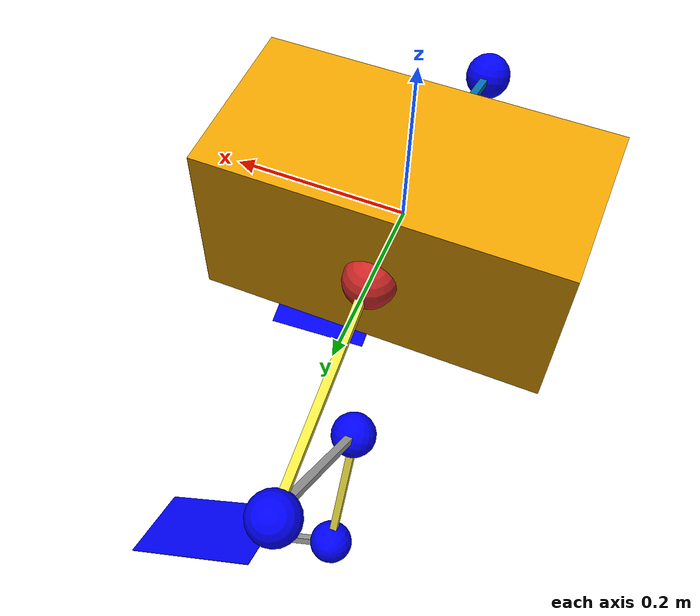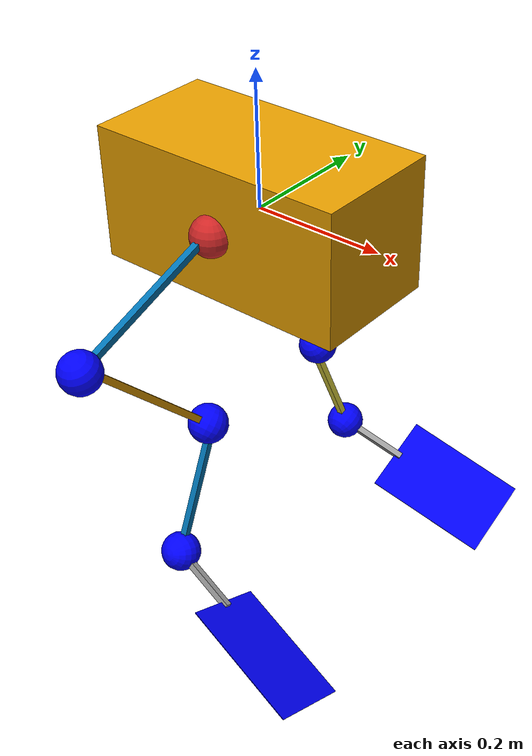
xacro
<?xml version="1.0"?>
<robot name="duck" xmlns:xacro="http://www.ros.org/wiki/xacro">
    <!-- Propreties -->
    <xacro:arg name="namespace" default="duck"/>
    <xacro:arg name="debug" default="0"/>

    <xacro:arg name="cog" default="0 0 0"/>
    <xacro:arg name="mass" default="0.01"/>

    <xacro:arg name="ixx" default="0.0015"/>
    <xacro:arg name="iyy" default="0.0015"/>
    <xacro:arg name="izz" default="0.0015"/>
    <xacro:arg name="ixy" default="0.0"/>
    <xacro:arg name="ixz" default="0.0"/>
    <xacro:arg name="iyz" default="0.0"/>

    <xacro:arg name="mesh_filename" default="$(find biped_descriptions)/meshes/tbi.stl"/>

    <!-- Links -->
    <!-- world link -->

    <link name="$(arg namespace)/base_link">
        <inertial>
        <origin xyz="0 0 -0.1" rpy="0 0 0" />
        <mass value="$(arg mass)"/>
        <inertia
            ixx="$(arg ixx)" ixy="$(arg ixy)" ixz="$(arg ixz)"
            iyy="$(arg iyy)" iyz="$(arg iyz)"
            izz="$(arg izz)"/>
        </inertial>
        <visual>
            <origin xyz="0 0 0.0" rpy="0 0 0" />
            <geometry>
                <box size="0.4 0.2 0.2"/>
            </geometry>
        </visual>
        <collision>
            <origin xyz="0 0 0" rpy="0 0 0"/>
            <geometry>
                <box size="0.4 0.2 0.2" />
            </geometry>
        </collision>
    </link>

    <!-- Sphere 1 : 2 rotations -->
    <link name="$(arg namespace)/base_to_hip_left">
        <inertial>
        <origin xyz="$(arg cog)" rpy="0 0 0" />
        <mass value="0.001"/>
        <inertia
            ixx="0.0002" ixy="$(arg ixy)" ixz="$(arg ixz)"
            iyy="0.0002" iyz="$(arg iyz)"
            izz="0.0002"/>
        </inertial>
        <visual>
            <origin xyz="0 0 0.0" rpy="0 0 0" />
            <geometry>
                <sphere radius="0.03"/>
            </geometry>
        </visual>
    </link>

    <joint name="$(arg namespace)/hip_joint_left" type="revolute">
        <origin xyz="0.0 0.1 0.0" rpy="0 0 0"/>
        <parent link="$(arg namespace)/base_link"/>
        <child link="$(arg namespace)/base_to_hip_left"/>
        <axis xyz="0 1 1"/>                         <!-- Rotation by Y and Z-->
        <limit effort="3.0" velocity="3.0" lower="-0.5" upper="0.5"/> <!-- Here can be modified later ... (for angles limits)-->
    </joint>

    <!-- Mirror base_to_hip link -->
    <link name="$(arg namespace)/base_to_hip_right">
        <!-- Adjust the origin for mirroring -->
        <origin xyz="-$(arg cog)" rpy="0 0 0" />
        <!-- Copy the inertial properties -->
        <inertial>
            <origin xyz="$(arg cog)" rpy="0 0 0" />
            <mass value="0.001"/>
            <inertia
                ixx="0.0002" ixy="$(arg ixy)" ixz="$(arg ixz)"
                iyy="0.0002" iyz="$(arg iyz)"
                izz="0.0002"/>
        </inertial>
        <!-- Mirror the sphere geometry -->
        <visual>
            <origin xyz="0 0 0" rpy="0 0 0" />
            <geometry>
                <sphere radius="0.03"/>
            </geometry>
        </visual>
    </link>

    <!-- Mirror hip_joint -->
    <joint name="$(arg namespace)/hip_joint_right" type="revolute">
        <!-- Adjust the origin for mirroring -->
        <origin xyz="0.0 -0.1 0.0" rpy="0 0 0"/>
        <!-- Copy the parent and child links -->
        <parent link="$(arg namespace)/base_link"/>
        <child link="$(arg namespace)/base_to_hip_right"/>
        <!-- Invert the joint axis -->
        <axis xyz="-1 1 1"/>
        <!-- Copy the joint limits -->
        <limit effort="3.0" velocity="3.0" lower="-0.5" upper="0.5"/> <!-- Here can be modified later ... (for angles limits)-->
    </joint>

    <!-- Femur link -->
    <link name="$(arg namespace)/femur_link_left">
        <inertial>
        <origin xyz="$(arg cog)" rpy="0 0 0" />
        <mass value="0.001"/>
        <inertia
            ixx="0.0002" ixy="$(arg ixy)" ixz="$(arg ixz)"
            iyy="0.0002" iyz="$(arg iyz)"
            izz="0.0002"/>
        </inertial>
        <visual>
            <origin xyz="0.0 0.0 0.0" rpy="0 0 0" />
            <geometry>
                <box size="0.01 0.25 0.01"/>
            </geometry>
        </visual>
    </link>

    <joint name="$(arg namespace)/to_hip_joint_left" type="prismatic">
        <origin xyz="0.0 0.13 -0.04" rpy="-0.35 0 0"/>
        <parent link="$(arg namespace)/base_to_hip_left"/>
        <child link="$(arg namespace)/femur_link_left"/>
        <axis xyz="0 0 0"/>
        <limit effort="0.0" velocity="0.0" lower="0.0" upper="0.0"/>
    </joint>

    <!-- Mirror femur_link -->
    <link name="$(arg namespace)/femur_link_right">
        <!-- Adjust the origin for mirroring -->
        <origin xyz="-$(arg cog)" rpy="0 0 0" />
        <!-- Copy the inertial properties -->
        <inertial>
            <origin xyz="$(arg cog)" rpy="0 0 0" />
            <mass value="0.001"/>
            <inertia
                ixx="0.0002" ixy="$(arg ixy)" ixz="$(arg ixz)"
                iyy="0.0002" iyz="$(arg iyz)"
                izz="0.0002"/>
        </inertial>
        <!-- Mirror the box geometry -->
        <visual>
            <origin xyz="0 0 0" rpy="0 0 0" />
            <geometry>
                <box size="0.01 0.25 0.01"/>
            </geometry>
        </visual>
    </link>

    <joint name="$(arg namespace)/to_hip_joint_right" type="prismatic">
        <origin xyz="0.0 -0.13 -0.04" rpy="0.35 0 0"/>
        <parent link="$(arg namespace)/base_to_hip_right"/>
        <child link="$(arg namespace)/femur_link_right"/>
        <axis xyz="0 0 0"/>
        <limit effort="0.0" velocity="0.0" lower="0.0" upper="0.0"/>
    </joint>

    <!-- Sphere 2 : 1 rotations -->
    <link name="$(arg namespace)/hip_to_knee_left">
        <inertial>
        <origin xyz="$(arg cog)" rpy="0 0 0" />
        <mass value="0.001"/>
        <inertia
            ixx="0.0002" ixy="$(arg ixy)" ixz="$(arg ixz)"
            iyy="0.0002" iyz="$(arg iyz)"
            izz="0.0002"/>
        </inertial>
        <visual>
            <origin xyz="0 0 0.0" rpy="0 0 0" />
            <geometry>
                <sphere radius="0.03"/>
            </geometry>
            <material name="blue">
                <color rgba="0 0 1 1"/>
            </material>
        </visual>
    </link>

    <joint name="$(arg namespace)/knee_joint_left" type="revolute">
        <origin xyz="0.0 0.125 0.0" rpy="0 0 0"/>
        <parent link="$(arg namespace)/femur_link_left"/>
        <child link="$(arg namespace)/hip_to_knee_left"/>
        <axis xyz="0 1 0"/> <!-- Defines the axis of translation -->
        <limit effort="3.0" velocity="0.01" lower="-0.5" upper="0.5"/> <!-- Here can be modified later ... (for angles limits)-->
    </joint>

    <!-- Mirror base_to_hip link -->
    <!-- Sphere 2 : 1 rotations -->
    <link name="$(arg namespace)/hip_to_knee_right">
        <inertial>
        <origin xyz="$(arg cog)" rpy="0 0 0" />
        <mass value="0.001"/>
        <inertia
            ixx="0.0000045" ixy="$(arg ixy)" ixz="$(arg ixz)"
            iyy="0.0000045" iyz="$(arg iyz)"
            izz="0.0000045"/>
        </inertial>
        <visual>
            <origin xyz="0 0 0.0" rpy="0 0 0" />
            <geometry>
                <sphere radius="0.03"/>
            </geometry>
            <material name="blue">
                <color rgba="0 0 1 1"/>
            </material>
        </visual>
    </link>

    <joint name="$(arg namespace)/knee_joint_right" type="revolute">
        <origin xyz="0.0 -0.125 0.0" rpy="0 0 0"/>
        <parent link="$(arg namespace)/femur_link_right"/>
        <child link="$(arg namespace)/hip_to_knee_right"/>
        <axis xyz="0 1 0"/> <!-- Defines the axis of translation -->
        <limit effort="3.0" velocity="0.01" lower="-0.5" upper="0.5"/> <!-- Here can be modified later ... (for angles limits)-->
    </joint>

    <!-- Tibio link -->
    <link name="$(arg namespace)/tibio_link_left">
        <inertial>
        <origin xyz="$(arg cog)" rpy="0 0 0" />
        <mass value="0.001"/>
        <inertia
            ixx="0.0002" ixy="$(arg ixy)" ixz="$(arg ixz)"
            iyy="0.0002" iyz="$(arg iyz)"
            izz="0.0002"/>
        </inertial>
        <visual>
            <origin xyz="0 0 0.0" rpy="0 0 0" />
            <geometry>
                <box size="0.01 0.3 0.01"/>
            </geometry>
        </visual>
    </link>

    <joint name="$(arg namespace)/to_knee_joint_left" type="prismatic">
        <origin xyz="0.0 -0.07 -0.14" rpy="-2.0 0 0"/>
        <parent link="$(arg namespace)/hip_to_knee_left"/>
        <child link="$(arg namespace)/tibio_link_left"/>
        <axis xyz="0 0 0"/>
        <limit effort="0.0" velocity="0.0" lower="0.0" upper="0.0"/>
    </joint>

    <!-- Tibio link Mirror-->
    <link name="$(arg namespace)/tibio_link_right">
        <inertial>
        <origin xyz="$(arg cog)" rpy="0 0 0" />
        <mass value="0.001"/>
        <inertia
            ixx="0.0002" ixy="$(arg ixy)" ixz="$(arg ixz)"
            iyy="0.0002" iyz="$(arg iyz)"
            izz="0.0002"/>
        </inertial>
        <visual>
            <origin xyz="0 0 0.0" rpy="0 0 0" />
            <geometry>
                <box size="0.01 0.3 0.01"/>
            </geometry>
        </visual>
    </link>

    <joint name="$(arg namespace)/to_knee_joint_right" type="prismatic">
        <origin xyz="0.0 0.07 -0.14" rpy="2.0 0 0"/>
        <parent link="$(arg namespace)/hip_to_knee_right"/>
        <child link="$(arg namespace)/tibio_link_right"/>
        <axis xyz="0 0 0"/>
        <limit effort="0.0" velocity="0.0" lower="0.0" upper="0.0"/>
    </joint>

    <!-- Sphere 3 : 1 rotations -->
    <link name="$(arg namespace)/knee_to_ankle_left">
        <inertial>
        <origin xyz="$(arg cog)" rpy="0 0 0" />
        <mass value="0.001"/>
        <inertia
            ixx="0.0002" ixy="$(arg ixy)" ixz="$(arg ixz)"
            iyy="0.0002" iyz="$(arg iyz)"
            izz="0.0002"/>
        </inertial>
        <visual>
            <origin xyz="0 0 0.0" rpy="0 0 0" />
            <geometry>
                <sphere radius="0.03"/>
            </geometry>
            <material name="blue">
                <color rgba="0 0 1 1"/>
            </material>
        </visual>
    </link>

    <joint name="$(arg namespace)/ankle_joint_left" type="revolute">
        <origin xyz="0.0 0.15 0.0" rpy="0 0 0"/>
        <parent link="$(arg namespace)/tibio_link_left"/>
        <child link="$(arg namespace)/knee_to_ankle_left"/>
        <axis xyz="0 1 0"/> <!-- Defines the axis of translation -->
        <limit effort="3.0" velocity="0.01" lower="-0.5" upper="0.5"/> <!-- Here can be modified later ... (for angles limits)-->
    </joint>

    <!--ToAnkle mirror -->
    <!-- Sphere 3 : 1 rotations -->
    <link name="$(arg namespace)/knee_to_ankle_right">
        <inertial>
        <origin xyz="$(arg cog)" rpy="0 0 0" />
        <mass value="0.01"/>
        <inertia
            ixx="0.0002" ixy="$(arg ixy)" ixz="$(arg ixz)"
            iyy="0.0002" iyz="$(arg iyz)"
            izz="0.0002"/>
        </inertial>
        <visual>
            <origin xyz="0 0 0.0" rpy="0 0 0" />
            <geometry>
                <sphere radius="0.03"/>
            </geometry>
            <material name="blue">
                <color rgba="0 0 1 1"/>
            </material>
        </visual>
    </link>

    <joint name="$(arg namespace)/ankle_joint_right" type="revolute">
        <origin xyz="0.0 -0.15 0.0" rpy="0 0 0"/>
        <parent link="$(arg namespace)/tibio_link_right"/>
        <child link="$(arg namespace)/knee_to_ankle_right"/>
        <axis xyz="0 1 0"/> <!-- Defines the axis of translation -->
        <limit effort="3.0" velocity="0.01" lower="-0.5" upper="0.5"/> <!-- Here can be modified later ... (for angles limits)-->
    </joint>

    <!-- Tarso link -->
    <link name="$(arg namespace)/tarso_link_left">
        <inertial>
        <origin xyz="$(arg cog)" rpy="0 0 0" />
        <mass value="0.001"/>
        <inertia
            ixx="0.0002" ixy="$(arg ixy)" ixz="$(arg ixz)"
            iyy="0.0002" iyz="$(arg iyz)"
            izz="0.0002"/>
        </inertial>
        <visual>
            <origin xyz="0 0 0.0" rpy="0 0 0" />
            <geometry>
                <box size="0.01 0.20 0.01"/>
            </geometry>
        </visual>
    </link>

    <joint name="$(arg namespace)/to_ankle_joint_left" type="prismatic">
        <origin xyz="0.0 0.05 0.1" rpy="-1.95 0 0"/>
        <parent link="$(arg namespace)/knee_to_ankle_left"/>
        <child link="$(arg namespace)/tarso_link_left"/>
        <axis xyz="0 0 0"/>
        <limit effort="0.0" velocity="0.0" lower="0.0" upper="0.0"/>
    </joint>

     <!-- Tarso link Mirror -->
    <link name="$(arg namespace)/tarso_link_right">
        <inertial>
        <origin xyz="$(arg cog)" rpy="0 0 0" />
        <mass value="0.001"/>
        <inertia
            ixx="0.0002" ixy="$(arg ixy)" ixz="$(arg ixz)"
            iyy="0.0002" iyz="$(arg iyz)"
            izz="0.0002"/>
        </inertial>
        <visual>
            <origin xyz="0 0 0.0" rpy="0 0 0" />
            <geometry>
                <box size="0.01 0.20 0.01"/>
            </geometry>
        </visual>
    </link>

    <joint name="$(arg namespace)/to_ankle_joint_right" type="prismatic">
        <origin xyz="0.0 -0.05 0.1" rpy="1.95 0 0"/>
        <parent link="$(arg namespace)/knee_to_ankle_right"/>
        <child link="$(arg namespace)/tarso_link_right"/>
        <axis xyz="0 0 0"/>
        <limit effort="0.0" velocity="0.0" lower="0.0" upper="0.0"/>
    </joint>

    <!-- Sphere 4 : 1 rotations -->
    <link name="$(arg namespace)/ankle_to_torso_left">
        <inertial>
        <origin xyz="$(arg cog)" rpy="0 0 0" />
        <mass value="0.001"/>
        <inertia
            ixx="0.0002" ixy="$(arg ixy)" ixz="$(arg ixz)"
            iyy="0.0002" iyz="$(arg iyz)"
            izz="0.0002"/>
        </inertial>
        <visual>
            <origin xyz="0 0 0.0" rpy="0 0 0" />
            <geometry>
                <sphere radius="0.03"/>
            </geometry>
            <material name="blue">
                <color rgba="0 0 1 1"/>
            </material>
        </visual>
    </link>

    <joint name="$(arg namespace)/torso_joint_left" type="revolute">
        <origin xyz="0.0 -0.1 0.0" rpy="0 0 0"/>
        <parent link="$(arg namespace)/tarso_link_left"/>
        <child link="$(arg namespace)/ankle_to_torso_left"/>
        <axis xyz="0 1 0"/>
        <limit effort="3.0" velocity="0.01" lower="-0.5" upper="0.5"/>
    </joint>

     <!-- Tarso link Mirror -->
    <link name="$(arg namespace)/ankle_to_torso_right">
        <inertial>
        <origin xyz="$(arg cog)" rpy="0 0 0" />
        <mass value="0.001"/>
        <inertia
            ixx="0.0002" ixy="$(arg ixy)" ixz="$(arg ixz)"
            iyy="0.0002" iyz="$(arg iyz)"
            izz="0.0002"/>
        </inertial>
        <visual>
            <origin xyz="0 0 0.0" rpy="0 0 0" />
            <geometry>
                <sphere radius="0.03"/>
            </geometry>
            <material name="blue">
                <color rgba="0 0 1 1"/>
            </material>
        </visual>
    </link>

    <joint name="$(arg namespace)/torso_joint_right" type="revolute">
        <origin xyz="0.0 0.1 0.0" rpy="0 0 0"/>
        <parent link="$(arg namespace)/tarso_link_right"/>
        <child link="$(arg namespace)/ankle_to_torso_right"/>
        <axis xyz="0 1 0"/>
        <limit effort="3.0" velocity="0.01" lower="-0.5" upper="0.5"/>
    </joint>

    <link name="$(arg namespace)/feet_link_left">
        <inertial>
        <origin xyz="$(arg cog)" rpy="0 0 0" />
        <mass value="0.001"/>
        <inertia
            ixx="0.0002" ixy="$(arg ixy)" ixz="$(arg ixz)"
            iyy="0.0002" iyz="$(arg iyz)"
            izz="0.0002"/>
        </inertial>
        <visual>
            <origin xyz="0 0 0.0" rpy="0 0 0" />
            <geometry>
                <box size="0.01 0.12 0.01"/>
            </geometry>
        </visual>
    </link>

    <joint name="$(arg namespace)/to_feet_joint_left" type="prismatic">
        <origin xyz="0.05 -0.02 0.0" rpy="0 0.0 1.2"/>
        <parent link="$(arg namespace)/ankle_to_torso_left"/>
        <child link="$(arg namespace)/feet_link_left"/>
        <axis xyz="0 0 0"/>
        <limit effort="0.0" velocity="0.0" lower="0.0" upper="0.0"/>
    </joint>

    <link name="$(arg namespace)/feet_link_right">
        <inertial>
        <origin xyz="$(arg cog)" rpy="0 0 0" />
        <mass value="0.001"/>
        <inertia
            ixx="0.0002" ixy="$(arg ixy)" ixz="$(arg ixz)"
            iyy="0.0002" iyz="$(arg iyz)"
            izz="0.0002"/>
        </inertial>
        <visual>
            <origin xyz="0 0 0.0" rpy="0 0 0" />
            <geometry>
                <box size="0.01 0.12 0.01"/>
            </geometry>
        </visual>
        <collision>
            <origin xyz="0 0 0" rpy="0 0 0"/>
        </collision>
    </link>

    <joint name="$(arg namespace)/to_feet_joint_right" type="prismatic">
        <origin xyz="0.05 0.02 0.0" rpy="0 0.0 -1.2"/>
        <parent link="$(arg namespace)/ankle_to_torso_right"/>
        <child link="$(arg namespace)/feet_link_right"/>
        <axis xyz="0 0 0"/>
        <limit effort="0.0" velocity="0.0" lower="0.0" upper="0.0"/>
    </joint>

    <!-- Pales -->
    <link name="$(arg namespace)/feet_toe_link_right">
        <inertial>
        <origin xyz="$(arg cog)" rpy="0 0 0" />
        <mass value="0.001"/>
        <inertia
            ixx="0.0002" ixy="$(arg ixy)" ixz="$(arg ixz)"
            iyy="0.0002" iyz="$(arg iyz)"
            izz="0.0002"/>
        </inertial>
        <visual>
            <origin xyz="0 0 0.0" rpy="0 0 0" />
            <geometry>
                <box size="0.2 0.13 0.001"/>
            </geometry>
            <material name="blue">
                <color rgba="0 0 1 1"/>
            </material>
        </visual>
        <collision>
            <origin xyz="0 0 0" rpy="0 0 0"/>
            <geometry>
                <box size="0.2 0.13 0.001"/>
            </geometry>
        </collision>
    </link>

    <joint name="$(arg namespace)/to_toe_joint_right" type="prismatic">
        <origin xyz="0.0 0.15 0.0" rpy="1.57 0.0 1.57"/>
        <parent link="$(arg namespace)/feet_link_right"/>
        <child link="$(arg namespace)/feet_toe_link_right"/>
        <axis xyz="0 0 0"/>
        <limit effort="0.0" velocity="0.0" lower="0.0" upper="0.0"/>
    </joint>

    <!-- Pales Mirror -->
    <link name="$(arg namespace)/feet_toe_link_left">
        <inertial>
        <origin xyz="$(arg cog)" rpy="0 0 0" />
        <mass value="0.001"/>
        <inertia
            ixx="0.0002" ixy="$(arg ixy)" ixz="$(arg ixz)"
            iyy="0.0002" iyz="$(arg iyz)"
            izz="0.0002"/>
        </inertial>
        <visual>
            <origin xyz="0 0 0.0" rpy="0 0 0" />
            <geometry>
                <box size="0.2 0.13 0.001"/>
            </geometry>
            <material name="blue">
                <color rgba="0 0 1 1"/>
            </material>
        </visual>
        <collision>
            <origin xyz="0 0 0" rpy="0 0 0"/>
            <geometry>
                <box size="0.2 0.13 0.001"/>
            </geometry>
        </collision>
    </link>

    <joint name="$(arg namespace)/to_toe_joint_left" type="revolute">
        <origin xyz="0.0 -0.15 0.0" rpy="1.57 0.0 1.57"/>
        <parent link="$(arg namespace)/feet_link_left"/>
        <child link="$(arg namespace)/feet_toe_link_left"/>
        <axis xyz="0 0 1"/>
       <limit effort="3.0" velocity="0.01" lower="-0.5" upper="0.5"/>
    </joint>

    <!-- ROS2 Controls -->
    <ros2_control name="hip_testing" type="system">
        <hardware>
            <plugin>gazebo_ros2_control/GazeboSystem</plugin>
        </hardware>
        <joint name="$(arg namespace)/hip_joint_left">
        <command_interface name="effort">
            <param name="min">-10</param>
            <param name="max">10</param>
        </command_interface>
        <state_interface name="position">
            <param name="initial_value">0.0</param>
        </state_interface>
        <state_interface name="velocity"/>
        <state_interface name="effort"/>
        </joint>
        <joint name="$(arg namespace)/hip_joint_right">
        <command_interface name="effort">
            <param name="min">-10</param>
            <param name="max">10</param>
        </command_interface>
        <state_interface name="position">
            <param name="initial_value">0.0</param>
        </state_interface>
        <state_interface name="velocity"/>
        <state_interface name="effort"/>
        </joint>
        <joint name="$(arg namespace)/to_hip_joint_left">
        <command_interface name="effort">
            <param name="min">-10</param>
            <param name="max">10</param>
        </command_interface>
        <state_interface name="position">
            <param name="initial_value">0.0</param>
        </state_interface>
        <state_interface name="velocity"/>
        <state_interface name="effort"/>
        </joint>
        <joint name="$(arg namespace)/to_hip_joint_right">
        <command_interface name="effort">
            <param name="min">-10</param>
            <param name="max">10</param>
        </command_interface>
        <state_interface name="position">
            <param name="initial_value">0.0</param>
        </state_interface>
        <state_interface name="velocity"/>
        <state_interface name="effort"/>
        </joint>
        <joint name="$(arg namespace)/knee_joint_left">
        <command_interface name="effort">
            <param name="min">-10</param>
            <param name="max">10</param>
        </command_interface>
        <state_interface name="position">
            <param name="initial_value">0.0</param>
        </state_interface>
        <state_interface name="velocity"/>
        <state_interface name="effort"/>
        </joint>
        <joint name="$(arg namespace)/knee_joint_right">
        <command_interface name="effort">
            <param name="min">-10</param>
            <param name="max">10</param>
        </command_interface>
        <state_interface name="position">
            <param name="initial_value">0.0</param>
        </state_interface>
        <state_interface name="velocity"/>
        <state_interface name="effort"/>
        </joint>
        <joint name="$(arg namespace)/to_knee_joint_left">
        <command_interface name="effort">
            <param name="min">-10</param>
            <param name="max">10</param>
        </command_interface>
        <state_interface name="position">
            <param name="initial_value">0.0</param>
        </state_interface>
        <state_interface name="velocity"/>
        <state_interface name="effort"/>
        </joint>
        <joint name="$(arg namespace)/to_knee_joint_right">
        <command_interface name="effort">
            <param name="min">-10</param>
            <param name="max">10</param>
        </command_interface>
        <state_interface name="position">
            <param name="initial_value">0.0</param>
        </state_interface>
        <state_interface name="velocity"/>
        <state_interface name="effort"/>
        </joint>
        <joint name="$(arg namespace)/ankle_joint_left">
        <command_interface name="effort">
            <param name="min">-10</param>
            <param name="max">10</param>
        </command_interface>
        <state_interface name="position">
            <param name="initial_value">0.0</param>
        </state_interface>
        <state_interface name="velocity"/>
        <state_interface name="effort"/>
        </joint>
        <joint name="$(arg namespace)/ankle_joint_right">
        <command_interface name="effort">
            <param name="min">-10</param>
            <param name="max">10</param>
        </command_interface>
        <state_interface name="position">
            <param name="initial_value">0.0</param>
        </state_interface>
        <state_interface name="velocity"/>
        <state_interface name="effort"/>
        </joint>
        <joint name="$(arg namespace)/to_ankle_joint_left">
        <command_interface name="effort">
            <param name="min">-10</param>
            <param name="max">10</param>
        </command_interface>
        <state_interface name="position">
            <param name="initial_value">0.0</param>
        </state_interface>
        <state_interface name="velocity"/>
        <state_interface name="effort"/>
        </joint>
        <joint name="$(arg namespace)/to_ankle_joint_right">
        <command_interface name="effort">
            <param name="min">-10</param>
            <param name="max">10</param>
        </command_interface>
        <state_interface name="position">
            <param name="initial_value">0.0</param>
        </state_interface>
        <state_interface name="velocity"/>
        <state_interface name="effort"/>
        </joint>
        <joint name="$(arg namespace)/torso_joint_left">
        <command_interface name="effort">
            <param name="min">-10</param>
            <param name="max">10</param>
        </command_interface>
        <state_interface name="position">
            <param name="initial_value">0.0</param>
        </state_interface>
        <state_interface name="velocity"/>
        <state_interface name="effort"/>
        </joint>
        <joint name="$(arg namespace)/torso_joint_right">
        <command_interface name="effort">
            <param name="min">-10</param>
            <param name="max">10</param>
        </command_interface>
        <state_interface name="position">
            <param name="initial_value">0.0</param>
        </state_interface>
        <state_interface name="velocity"/>
        <state_interface name="effort"/>
        </joint>
        <joint name="$(arg namespace)/to_feet_joint_left">
        <command_interface name="effort">
            <param name="min">-10</param>
            <param name="max">10</param>
        </command_interface>
        <state_interface name="position">
            <param name="initial_value">0.0</param>
        </state_interface>
        <state_interface name="velocity"/>
        <state_interface name="effort"/>
        </joint>
        <joint name="$(arg namespace)/to_feet_joint_right">
        <command_interface name="effort">
            <param name="min">-10</param>
            <param name="max">10</param>
        </command_interface>
        <state_interface name="position">
            <param name="initial_value">0.0</param>
        </state_interface>
        <state_interface name="velocity"/>
        <state_interface name="effort"/>
        </joint>
        <joint name="$(arg namespace)/to_toe_joint_right">
        <command_interface name="effort">
            <param name="min">-10</param>
            <param name="max">10</param>
        </command_interface>
        <state_interface name="position">
            <param name="initial_value">0.0</param>
        </state_interface>
        <state_interface name="velocity"/>
        <state_interface name="effort"/>
        </joint>
        <joint name="$(arg namespace)/to_toe_joint_left">
        <command_interface name="effort">
            <param name="min">-10</param>
            <param name="max">10</param>
        </command_interface>
        <state_interface name="position">
            <param name="initial_value">0.0</param>
        </state_interface>
        <state_interface name="velocity"/>
        <state_interface name="effort"/>
        </joint>
    </ros2_control>

    <gazebo>
        <plugin filename="libgazebo_ros2_control.so" name="gazebo_ros2_control">
        <parameters>$(find biped_descriptions)/config/duck.yaml</parameters>
        </plugin>
    </gazebo>

    <!-- Adding some good colors-->
    <gazebo reference="$(arg namespace)/base_to_hip_left">
        <material>Gazebo/Red</material>
    </gazebo>

    <gazebo reference="$(arg namespace)/hip_to_knee_left">
        <material>Gazebo/Blue</material>
    </gazebo>

    <gazebo reference="$(arg namespace)/knee_to_ankle_left">
        <material>Gazebo/Orange</material>
    </gazebo>

    <gazebo reference="$(arg namespace)/ankle_to_torso_left">
        <material>Gazebo/Yellow</material>
    </gazebo>

    <gazebo reference="$(arg namespace)/feet_link_left">
        <material>Gazebo/Grey</material>
    </gazebo>

    <gazebo reference="$(arg namespace)/base_to_hip_right">
        <material>Gazebo/Red</material>
    </gazebo>

    <gazebo reference="$(arg namespace)/hip_to_knee_right">
        <material>Gazebo/Blue</material>
    </gazebo>

    <gazebo reference="$(arg namespace)/knee_to_ankle_right">
        <material>Gazebo/Orange</material>
    </gazebo>

    <gazebo reference="$(arg namespace)/ankle_to_torso_right">
        <material>Gazebo/Yellow</material>
    </gazebo>

    <gazebo reference="$(arg namespace)/feet_link_right">
        <material>Gazebo/Grey</material>
    </gazebo>

</robot>
